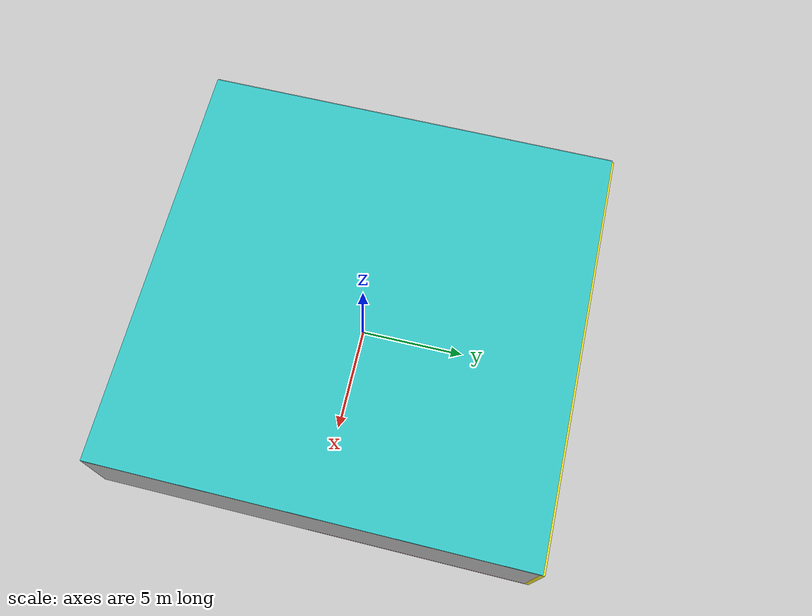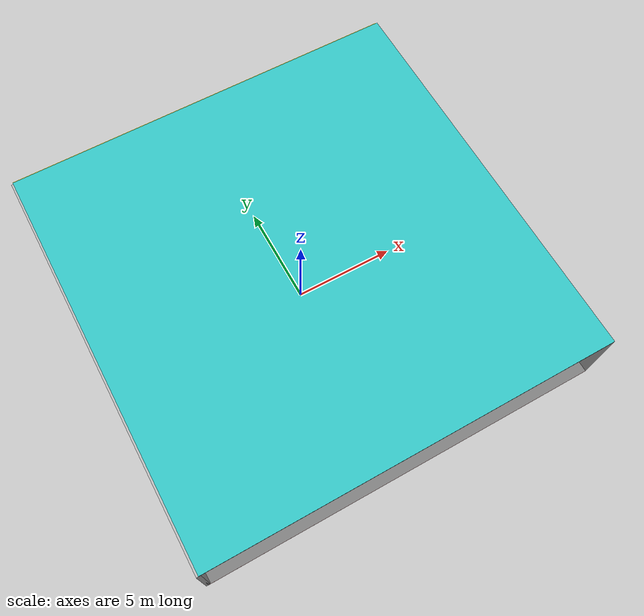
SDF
<sdf version="1.4">
 <world name="default">
  <physics type="ode">
   <max_step_size>0.001</max_step_size>
   <real_time_factor>1</real_time_factor>
   <real_time_update_rate>1000</real_time_update_rate>
   <gravity>0 0 -9.8</gravity>
  </physics>
  <scene><ambient>0.4 0.4 0.4 1</ambient><background>0.7 0.7 0.7 1</background><shadows>1</shadows></scene>
  <model name="Surrounding">
   <static>1</static>
   <link name="Ceiling">
    <collision name="Ceiling_Collision"><geometry><box><size>20 20 0.1</size></box></geometry></collision>
    <visual name="Ceiling_Visual">
     <geometry><box><size>20 20 0.1</size></box></geometry>
     <material>
      <script><uri>file://media/materials/scripts/gazebo.material</uri><name>Gazebo/TurquoiseGlow</name></script>
     </material>
    </visual>
    <pose>0 0 4.05 0 0 0</pose>
   </link>
   <link name="Wall_South">
    <collision name="Wall_South_Collision">
     <geometry><box><size>20 0 4</size></box></geometry>
     <pose>0 0 2 0 -0 0</pose>
    </collision>
    <visual name="Wall_South_Visual">
     <pose>0 0 2 0 -0 0</pose>
     <geometry><box><size>20 0 4</size></box></geometry>
     <material>
      <script><uri>file://media/materials/scripts/gazebo.material</uri><name>Gazebo/GreyTransparent</name></script>
     </material>
    </visual>
    <velocity_decay><linear>0</linear><angular>0</angular></velocity_decay>
    <pose>0 -10 0 0 -0 0</pose>
   </link>
   <link name="Wall_East">
    <collision name="Wall_21_Collision">
     <geometry><box><size>20 0 4</size></box></geometry>
     <pose>0 0 2 0 -0 0</pose>
    </collision>
    <visual name="Wall_21_Visual">
     <pose>0 0 2 0 -0 0</pose>
     <geometry><box><size>20 0 4</size></box></geometry>
     <material>
      <script><uri>file://media/materials/scripts/gazebo.material</uri><name>Gazebo/JointAnchor</name></script>
     </material>
    </visual>
    <velocity_decay><linear>0</linear><angular>0</angular></velocity_decay>
    <pose>10 0 0 0 -0 1.5708</pose>
   </link>
   <link name="Wall_North">
    <collision name="Wall_22_Collision">
     <geometry><box><size>20 0.2 4</size></box></geometry>
     <pose>0 0 2 0 -0 0</pose>
    </collision>
    <visual name="Wall_22_Visual">
     <pose>0 0 2 0 -0 0</pose>
     <geometry><box><size>20 0.2 4</size></box></geometry>
     <material>
      <script><uri>file://media/materials/scripts/gazebo.material</uri><name>Gazebo/YellowGlow</name></script>
     </material>
    </visual>
    <velocity_decay><linear>0</linear><angular>0</angular></velocity_decay>
    <pose>0 10 0 0 -0 0</pose>
   </link>
   <link name="Wall_West">
    <collision name="Wall_23_Collision">
     <geometry><box><size>20 0.2 4</size></box></geometry>
     <pose>0 0 2 0 -0 0</pose>
    </collision>
    <visual name="Wall_23_Visual">
     <pose>0 0 2 0 -0 0</pose>
     <geometry><box><size>20 0.2 4</size></box></geometry>
     <material>
      <script><uri>file://media/materials/scripts/gazebo.material</uri><name>Gazebo/JointAnchor</name></script>
     </material>
    </visual>
    <velocity_decay><linear>0</linear><angular>0</angular></velocity_decay>
    <pose>-10 0 0 0 0 -1.5708</pose>
   </link>
   <link name="Ground_link">
    <collision name="collision">
     <pose>0 0 .05 0 -0 0</pose>
     <geometry><box><size>20 20 0.1</size></box></geometry>
    </collision>
    <visual name="visual">
     <pose>0 0 .05 0 -0 0</pose>
     <geometry><box><size>20 20 0.1</size></box></geometry>
     <material>
      <script><uri>file://media/materials/scripts/gazebo.material</uri><name>Gazebo/RedTransparent</name></script>
     </material>
    </visual>
   </link>
   <static>1</static>
  </model>
  <spherical_coordinates>
   <surface_model>EARTH_WGS84</surface_model>
   <latitude_deg>0</latitude_deg>
   <longitude_deg>0</longitude_deg>
   <elevation>0</elevation>
   <heading_deg>0</heading_deg>
  </spherical_coordinates>
  <light name="lightball_0" type="diffuse">
   <diffuse>0.8 0.8 0.8 1</diffuse>
   <specular>0.2 0.2 0.2 1</specular>
   <attenuation>
    <range>100</range>
    <constant>0.7</constant>
    <linear>0.01</linear>
    <quadratic>0.001</quadratic>
   </attenuation>
   <direction>-0.5 0.1 -0.9</direction>
   <pose>-5.32035497536 1.07056798433 3.06892679335 0 0 0</pose>
  </light>
  <light name="lightball_1" type="diffuse">
   <diffuse>0.8 0.8 0.8 1</diffuse>
   <specular>0.2 0.2 0.2 1</specular>
   <attenuation>
    <range>100</range>
    <constant>0.7</constant>
    <linear>0.01</linear>
    <quadratic>0.001</quadratic>
   </attenuation>
   <direction>-0.5 0.1 -0.9</direction>
   <pose>-4.7401559844 -8.02029335501 0.727983317944 0 0 0</pose>
  </light>
  <light name="lightball_2" type="diffuse">
   <diffuse>0.8 0.8 0.8 1</diffuse>
   <specular>0.2 0.2 0.2 1</specular>
   <attenuation>
    <range>100</range>
    <constant>0.7</constant>
    <linear>0.01</linear>
    <quadratic>0.001</quadratic>
   </attenuation>
   <direction>-0.5 0.1 -0.9</direction>
   <pose>-4.91986388536 -1.85678025533 1.01599454164 0 0 0</pose>
  </light>
  <light name="lightball_3" type="diffuse">
   <diffuse>0.8 0.8 0.8 1</diffuse>
   <specular>0.2 0.2 0.2 1</specular>
   <attenuation>
    <range>100</range>
    <constant>0.7</constant>
    <linear>0.01</linear>
    <quadratic>0.001</quadratic>
   </attenuation>
   <direction>-0.5 0.1 -0.9</direction>
   <pose>2.04159737701 9.91657520887 3.0596467386 0 0 0</pose>
  </light>
  <light name="lightball_4" type="diffuse">
   <diffuse>0.8 0.8 0.8 1</diffuse>
   <specular>0.2 0.2 0.2 1</specular>
   <attenuation>
    <range>100</range>
    <constant>0.7</constant>
    <linear>0.01</linear>
    <quadratic>0.001</quadratic>
   </attenuation>
   <direction>-0.5 0.1 -0.9</direction>
   <pose>-8.8092461844 -2.81976421015 1.7409369159 0 0 0</pose>
  </light>
  <include>
   <uri>model://robocup_3Dsim_goal</uri>
   <pose>-4.73794186527 -7.06580458033 0 0 0 3.12240493147</pose>
  </include>
  <include><uri>model://table</uri><pose>-1.0861568778 4.10612322517 0 0 0 1.89819487071</pose></include>
  <include>
   <uri>model://robocup_3Dsim_goal</uri>
   <pose>-1.9868931678 7.40514407241 0 0 0 2.45555678588</pose>
  </include>
  <include><uri>model://table</uri><pose>0.856133473928 -4.06899374667 0 0 0 0.741492483012</pose></include>
 </world>
</sdf>

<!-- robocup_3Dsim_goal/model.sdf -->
<sdf version="1.5">
  <model name="robocup_3d_goal">
    <static>true</static>
    <link name="left_post">
      <pose>0 1.05 0.45 0 0 0</pose>
      <collision name="collision">
        <geometry>
          <cylinder>
            <radius>0.05</radius>
            <length>0.9</length>
          </cylinder>
        </geometry>
      </collision>
      <visual name="visual">
        <geometry>
          <cylinder>
            <radius>0.05</radius>
            <length>0.9</length>
          </cylinder>
        </geometry>
        <material>
          <script>
            <uri>file://media/materials/scripts/gazebo.material</uri>
            <name>Gazebo/ZincYellow</name>
          </script>
        </material>
      </visual>
    </link>
    <link name="left_support_horiz_lower">
      <pose>0.30 1.05 0.01 0 0 0</pose>
      <collision name="collision">
        <geometry>
          <box>
            <size>0.50 0.02 0.02</size>
          </box>
        </geometry>
      </collision>
      <visual name="visual">
        <geometry>
          <box>
            <size>0.50 0.02 0.02</size>
          </box>
        </geometry>
        <material>
          <script>
            <uri>file://media/materials/scripts/gazebo.material</uri>
            <name>Gazebo/White</name>
          </script>
        </material>
      </visual>
    </link>
    <link name="left_support_horiz_upper">
      <pose>0.30 1.05 0.79 0 0 0</pose>
      <collision name="collision">
        <geometry>
          <box>
            <size>0.50 0.02 0.02</size>
          </box>
        </geometry>
      </collision>
      <visual name="visual">
        <geometry>
          <box>
            <size>0.50 0.02 0.02</size>
          </box>
        </geometry>
        <material>
          <script>
            <uri>file://media/materials/scripts/gazebo.material</uri>
            <name>Gazebo/White</name>
          </script>
        </material>
      </visual>
    </link>
    <link name="left_support_vertical">
      <pose>0.56 1.05 0.4 0 1.5708 0</pose>
      <collision name="collision">
        <geometry>
          <box>
            <size>0.80 0.02 0.02</size>
          </box>
        </geometry>
      </collision>
      <visual name="visual">
        <geometry>
          <box>
            <size>0.80 0.02 0.02</size>
          </box>
        </geometry>
        <material>
          <script>
            <uri>file://media/materials/scripts/gazebo.material</uri>
            <name>Gazebo/White</name>
          </script>
        </material>
      </visual>
    </link>
    <link name="right_support_horiz_lower">
      <pose>0.30 -1.05 0.01 0 0 0</pose>
      <collision name="collision">
        <geometry>
          <box>
            <size>0.50 0.02 0.02</size>
          </box>
        </geometry>
      </collision>
      <visual name="visual">
        <geometry>
          <box>
            <size>0.50 0.02 0.02</size>
          </box>
        </geometry>
        <material>
          <script>
            <uri>file://media/materials/scripts/gazebo.material</uri>
            <name>Gazebo/White</name>
          </script>
        </material>
      </visual>
    </link>
    <link name="right_support_horiz_upper">
      <pose>0.30 -1.05 0.79 0 0 0</pose>
      <collision name="collision">
        <geometry>
          <box>
            <size>0.50 0.02 0.02</size>
          </box>
        </geometry>
      </collision>
      <visual name="visual">
        <geometry>
          <box>
            <size>0.50 0.02 0.02</size>
          </box>
        </geometry>
        <material>
          <script>
            <uri>file://media/materials/scripts/gazebo.material</uri>
            <name>Gazebo/White</name>
          </script>
        </material>
      </visual>
    </link>
    <link name="right_support_vertical">
      <pose>0.56 -1.05 0.4 0 1.5708 0</pose>
      <collision name="collision">
        <geometry>
          <box>
            <size>0.80 0.02 0.02</size>
          </box>
        </geometry>
      </collision>
      <visual name="visual">
        <geometry>
          <box>
            <size>0.80 0.02 0.02</size>
          </box>
        </geometry>
        <material>
          <script>
            <uri>file://media/materials/scripts/gazebo.material</uri>
            <name>Gazebo/White</name>
          </script>
        </material>
      </visual>
    </link>
    <link name="center_support_horiz_lower">
      <pose>0.56 0 0.01 0 1.5708 0</pose>
      <collision name="collision">
        <geometry>
          <box>
            <size>0.02 2.08 0.02</size>
          </box>
        </geometry>
      </collision>
      <visual name="visual">
        <geometry>
          <box>
            <size>0.02 2.08 0.02</size>
          </box>
        </geometry>
        <material>
          <script>
            <uri>file://media/materials/scripts/gazebo.material</uri>
            <name>Gazebo/White</name>
          </script>
        </material>
      </visual>
    </link>
    <link name="center_support_horiz_upper">
      <pose>0.56 0 0.79 0 1.5708 0</pose>
      <collision name="collision">
        <geometry>
          <box>
            <size>0.02 2.08 0.02</size>
          </box>
        </geometry>
      </collision>
      <visual name="visual">
        <geometry>
          <box>
            <size>0.02 2.08 0.02</size>
          </box>
        </geometry>
        <material>
          <script>
            <uri>file://media/materials/scripts/gazebo.material</uri>
            <name>Gazebo/White</name>
          </script>
        </material>
      </visual>
    </link>
    <link name="right_post">
      <pose>0 -1.05 0.45 0 0 0</pose>
      <collision name="collision">
        <geometry>
          <cylinder>
            <radius>0.05</radius>
            <length>0.9</length>
          </cylinder>
        </geometry>
      </collision>
      <visual name="visual">
        <geometry>
          <cylinder>
            <radius>0.05</radius>
            <length>0.9</length>
          </cylinder>
        </geometry>
        <material>
          <script>
            <uri>file://media/materials/scripts/gazebo.material</uri>
            <name>Gazebo/ZincYellow</name>
          </script>
        </material>
      </visual>
    </link>
    <link name="crossbar">
      <pose>0 0 0.85 1.57 1.57 0</pose>
      <collision name="collision">
        <geometry>
          <cylinder>
            <radius>0.05</radius>
            <length>2.0</length>
          </cylinder>
        </geometry>
      </collision>
      <visual name="visual">
        <geometry>
          <cylinder>
            <radius>0.05</radius>
            <length>2.0</length>
          </cylinder>
        </geometry>
        <material>
          <script>
            <uri>file://media/materials/scripts/gazebo.material</uri>
            <name>Gazebo/ZincYellow</name>
          </script>
        </material>
      </visual>
    </link>
    <link name="center_net">
      <pose>0.56 0 0.40 0 0 0</pose>
      <collision name="collision">
        <geometry>
          <box>
            <size>0.01 2.1 0.80</size>
          </box>
        </geometry>
      </collision>
      <visual name="visual">
        <geometry>
          <box>
            <size>0.01 2.1 0.80</size>
          </box>
        </geometry>
        <material>
          <script>
            <uri>model://../model_source/models/robocup09_spl_field/materials/scripts/</uri>
            <uri>model://../model_source/models/robocup09_spl_field/materials/textures/</uri>
            <name>RoboCup/Net</name>
          </script>
        </material>
      </visual>
    </link>
    <link name="left_net">
      <pose>0.30 1.05 0.40 0 0 0</pose>
      <collision name="collision">
        <geometry>
          <box>
            <size>0.50 0.01 0.76</size>
          </box>
        </geometry>
      </collision>
      <visual name="visual">
        <geometry>
          <box>
            <size>0.50 0.01 0.76</size>
          </box>
        </geometry>
        <material>
          <script>
            <uri>model://../model_source/models/robocup09_spl_field/materials/scripts/</uri>
            <uri>model://../model_source/models/robocup09_spl_field/materials/textures/</uri>
            <name>RoboCup/Net</name>
          </script>
        </material>
      </visual>
    </link>
    <link name="right_net">
      <pose>0.30 -1.05 0.40 0 0 0</pose>
      <collision name="collision">
        <geometry>
          <box>
            <size>0.50 0.01 0.76</size>
          </box>
        </geometry>
      </collision>
      <visual name="visual">
        <geometry>
          <box>
            <size>0.50 0.01 0.76</size>
          </box>
        </geometry>
        <material>
          <script>
            <uri>model://../model_source/models/robocup09_spl_field/materials/scripts/</uri>
            <uri>model://../model_source/models/robocup09_spl_field/materials/textures/</uri>
            <name>RoboCup/Net</name>
          </script>
        </material>
      </visual>
    </link>
  </model>
</sdf>

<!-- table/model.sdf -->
<sdf version="1.5">
  <model name="table">
    <static>true</static>
    <link name="link">
      <collision name="surface">
        <pose>0 0 1.0 0 0 0</pose>
        <geometry>
          <box>
            <size>1.5 0.8 0.03</size>
          </box>
        </geometry>
        <surface>
          <friction>
            <ode>
              <mu>0.6</mu>
              <mu2>0.6</mu2>
            </ode>
          </friction>
        </surface>
      </collision>
      <visual name="visual1">
        <pose>0 0 1.0 0 0 0</pose>
        <geometry>
          <box>
            <size>1.5 0.8 0.03</size>
          </box>
        </geometry>
        <material>
          <script>
            <uri>model://media/materials/scripts/gazebo.material</uri>
            <name>Gazebo/Wood</name>
          </script>
        </material>
      </visual>
      <collision name="front_left_leg">
        <pose>0.68 0.38 0.5 0 0 0</pose>
        <geometry>
          <cylinder>
            <radius>0.02</radius>
            <length>1.0</length>
          </cylinder>
        </geometry>
      </collision>
      <visual name="front_left_leg">
        <pose>0.68 0.38 0.5 0 0 0</pose>
        <geometry>
          <cylinder>
            <radius>0.02</radius>
            <length>1.0</length>
          </cylinder>
        </geometry>
        <material>
          <script>
            <uri>model://media/materials/scripts/gazebo.material</uri>
            <name>Gazebo/Grey</name>
          </script>
        </material>
      </visual>
      <collision name="front_right_leg">
        <pose>0.68 -0.38 0.5 0 0 0</pose>
        <geometry>
          <cylinder>
            <radius>0.02</radius>
            <length>1.0</length>
          </cylinder>
        </geometry>
      </collision>
      <visual name="front_right_leg">
        <pose>0.68 -0.38 0.5 0 0 0</pose>
        <geometry>
          <cylinder>
            <radius>0.02</radius>
            <length>1.0</length>
          </cylinder>
        </geometry>
        <material>
          <script>
            <uri>model://media/materials/scripts/gazebo.material</uri>
            <name>Gazebo/Grey</name>
          </script>
        </material>
      </visual>
      <collision name="back_right_leg">
        <pose>-0.68 -0.38 0.5 0 0 0</pose>
        <geometry>
          <cylinder>
            <radius>0.02</radius>
            <length>1.0</length>
          </cylinder>
        </geometry>
      </collision>
      <visual name="back_right_leg">
        <pose>-0.68 -0.38 0.5 0 0 0</pose>
        <geometry>
          <cylinder>
            <radius>0.02</radius>
            <length>1.0</length>
          </cylinder>
        </geometry>
        <material>
          <script>
            <uri>model://media/materials/scripts/gazebo.material</uri>
            <name>Gazebo/Grey</name>
          </script>
        </material>
      </visual>
      <collision name="back_left_leg">
        <pose>-0.68 0.38 0.5 0 0 0</pose>
        <geometry>
          <cylinder>
            <radius>0.02</radius>
            <length>1.0</length>
          </cylinder>
        </geometry>
      </collision>
      <visual name="back_left_leg">
        <pose>-0.68 0.38 0.5 0 0 0</pose>
        <geometry>
          <cylinder>
            <radius>0.02</radius>
            <length>1.0</length>
          </cylinder>
        </geometry>
        <material>
          <script>
            <uri>model://media/materials/scripts/gazebo.material</uri>
            <name>Gazebo/Grey</name>
          </script>
        </material>
      </visual>
    </link>
  </model>
</sdf>
